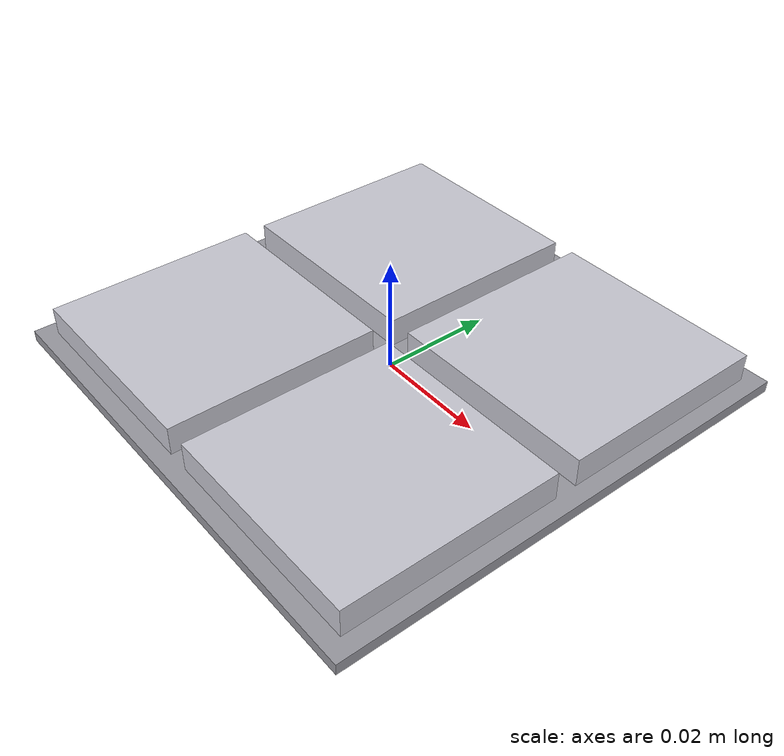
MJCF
<mujoco model="Switch_Quantity2_03">
  <asset>
    <material name="Switch_Quantity2_03_bezel" rgba="0.60 0.60 0.63 1" specular="0.9" shininess="0.95"/>
    <material name="Switch_Quantity2_03_btn1" rgba="0.78 0.78 0.82 1" specular="0.9" shininess="0.95"/>
    <material name="Switch_Quantity2_03_btn2" rgba="0.78 0.78 0.82 1" specular="0.9" shininess="0.95"/>
    <material name="Switch_Quantity2_03_btn3" rgba="0.78 0.78 0.82 1" specular="0.9" shininess="0.95"/>
    <material name="Switch_Quantity2_03_btn4" rgba="0.78 0.78 0.82 1" specular="0.9" shininess="0.95"/>
  </asset>
  <worldbody>
    <body name="Switch_Quantity2_03">
      <geom name="Switch_Quantity2_03_bezel" type="box"
            pos="0 0 0.001" size="0.043 0.043 0.001"
            material="Switch_Quantity2_03_bezel"/>
      <geom name="Switch_Quantity2_03_btn1" type="box"
            pos="-0.021 0.021 0.0035" size="0.019 0.019 0.0035"
            material="Switch_Quantity2_03_btn1"/>
      <geom name="Switch_Quantity2_03_btn2" type="box"
            pos="0.021 0.021 0.0035" size="0.019 0.019 0.0035"
            material="Switch_Quantity2_03_btn2"/>
      <geom name="Switch_Quantity2_03_btn3" type="box"
            pos="-0.021 -0.021 0.0035" size="0.019 0.019 0.0035"
            material="Switch_Quantity2_03_btn3"/>
      <geom name="Switch_Quantity2_03_btn4" type="box"
            pos="0.021 -0.021 0.0035" size="0.019 0.019 0.0035"
            material="Switch_Quantity2_03_btn4"/>
    </body>
  </worldbody>
</mujoco>
